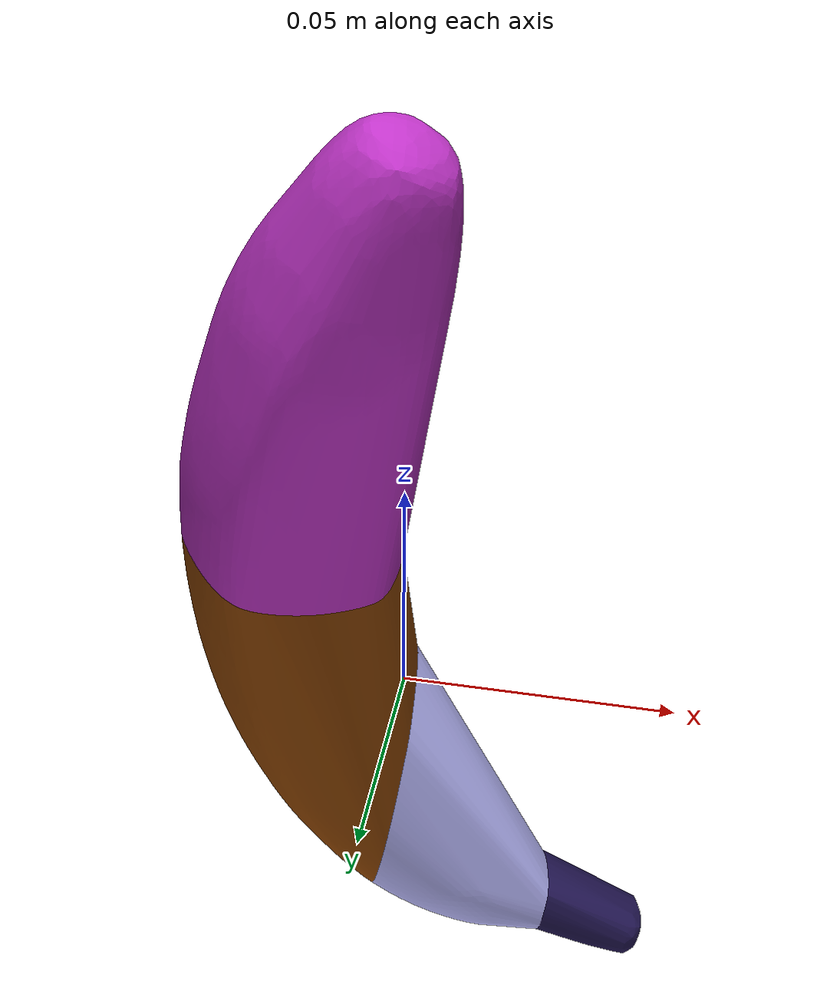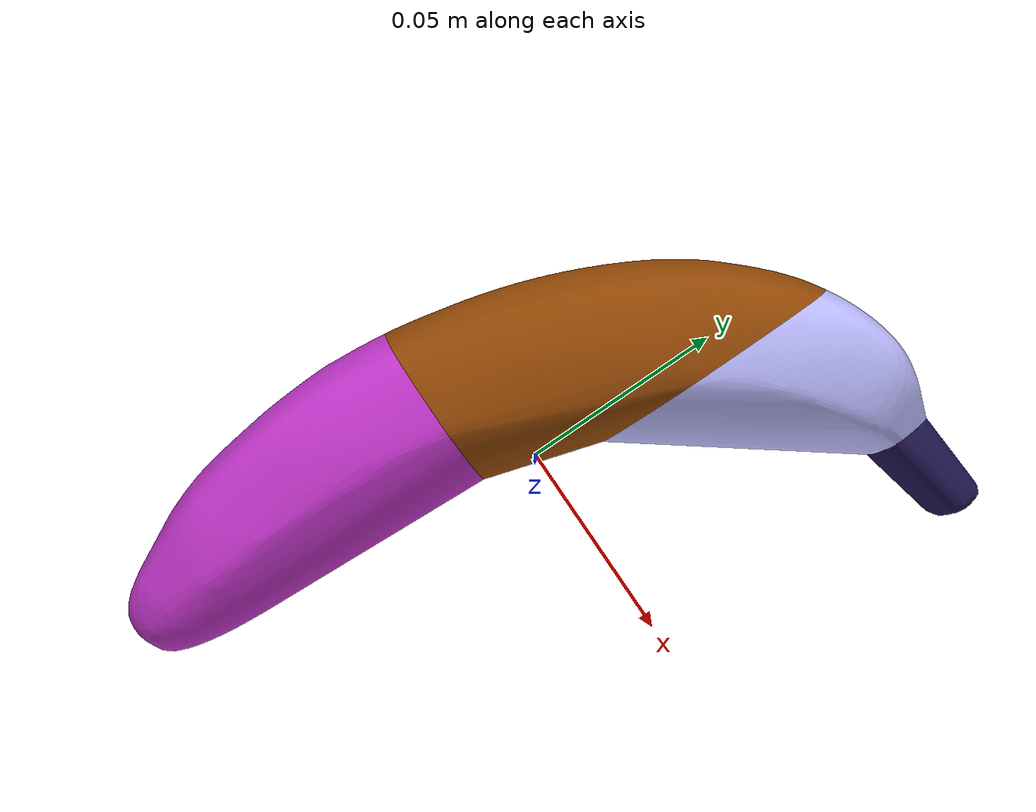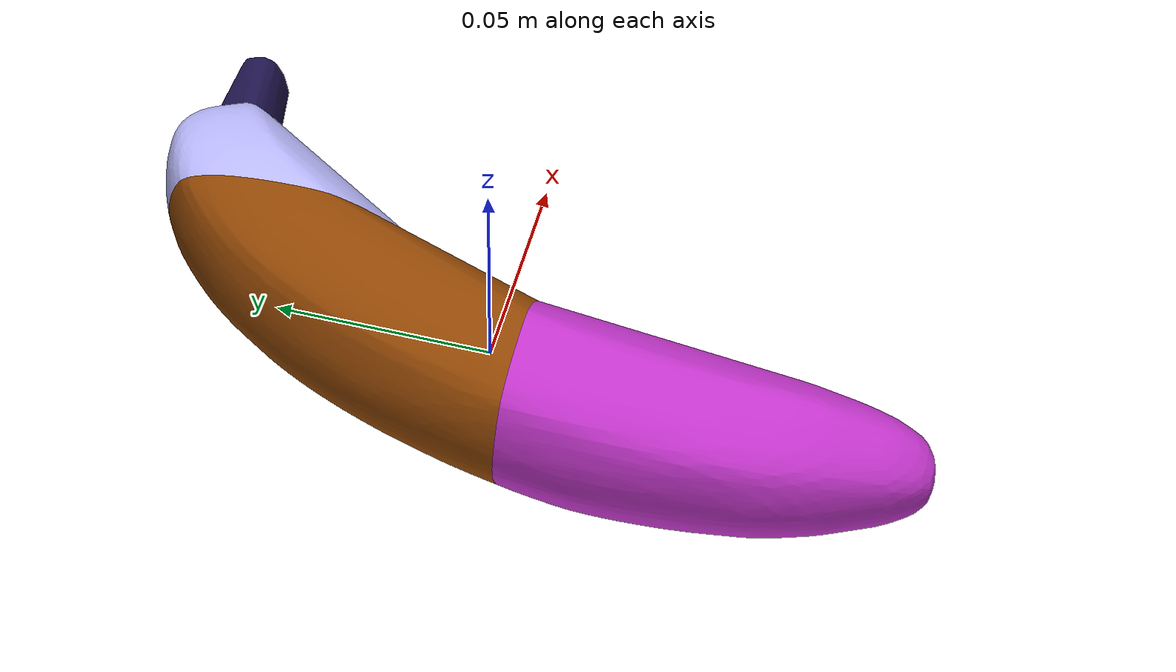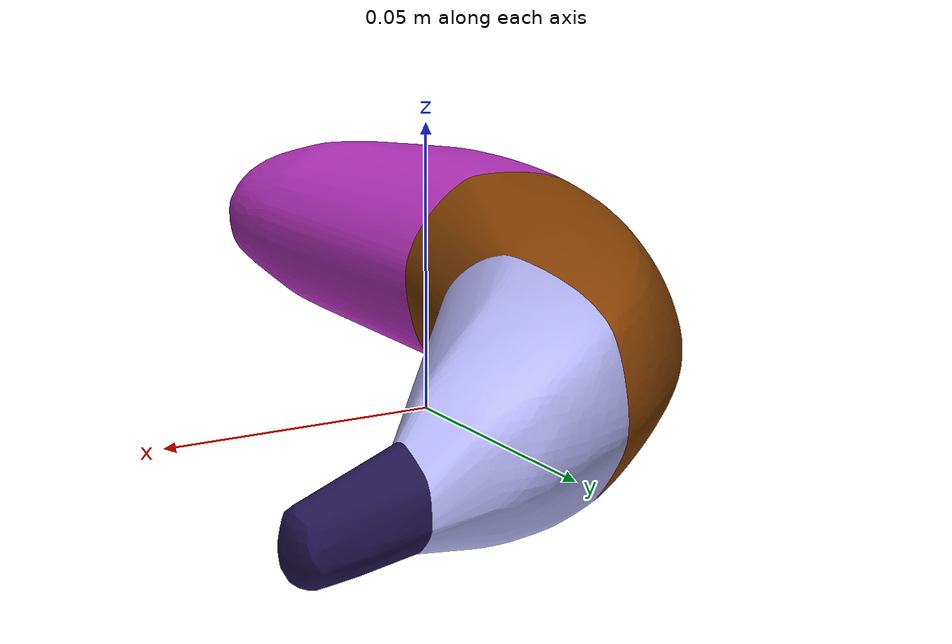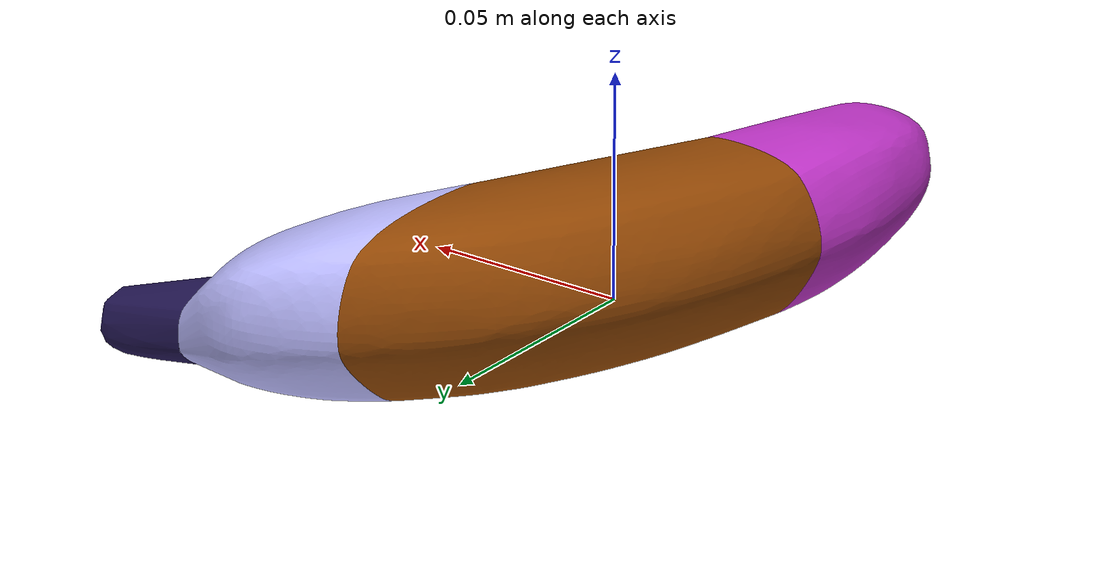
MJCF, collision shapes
<mujoco model="YcbBanana">
  <asset>
    <texture type="2d" name="texture_map" file="texture_map.png" />
    <material
            name="material_0"
            texture="texture_map"
            specular="0.5"
            shininess="0.5"
        />
    <mesh file="../../../assets/mujoco_objects/YcbBanana/textured.obj" />
    <mesh
            file="../../../assets/mujoco_objects/YcbBanana/textured_collision_0.obj"
        />
    <mesh
            file="../../../assets/mujoco_objects/YcbBanana/textured_collision_1.obj"
        />
    <mesh
            file="../../../assets/mujoco_objects/YcbBanana/textured_collision_2.obj"
        />
    <mesh
            file="../../../assets/mujoco_objects/YcbBanana/textured_collision_3.obj"
        />
  </asset>
  <worldbody>
    <body name="sample_object">
    <freejoint name="sample_object_free" />
    <inertial mass="0.066" pos="0.01 0.0 0.01" diaginertia="1e-3 1e-3 1e-3" />
      <geom
                material="material_0"
                mesh="textured"
                group="2"
                type="mesh"
                contype="0"
                conaffinity="0"
                friction="1.0 0.01 0.001"
                solimp="0.95 0.99 0.001"
                solref="0.02 1"
            />
      <geom
                mesh="textured_collision_0"
                rgba="0.12558908510255506 0.07928534210229121 0.3062762341571761 1"
                group="3"
                type="mesh"
            />
      <geom
                mesh="textured_collision_1"
                rgba="0.7300014092589462 0.7278161313757494 0.9952520289879426 1"
                group="3"
                type="mesh"
            />
      <geom
                mesh="textured_collision_2"
                rgba="0.5699971246248724 0.2769214337137039 0.017836234615764668 1"
                group="3"
                type="mesh"
            />
      <geom
                mesh="textured_collision_3"
                rgba="0.759786491954652 0.2052198583395327 0.7907496205706185 1"
                group="3"
                type="mesh"
            />
    </body>
  </worldbody>
</mujoco>
